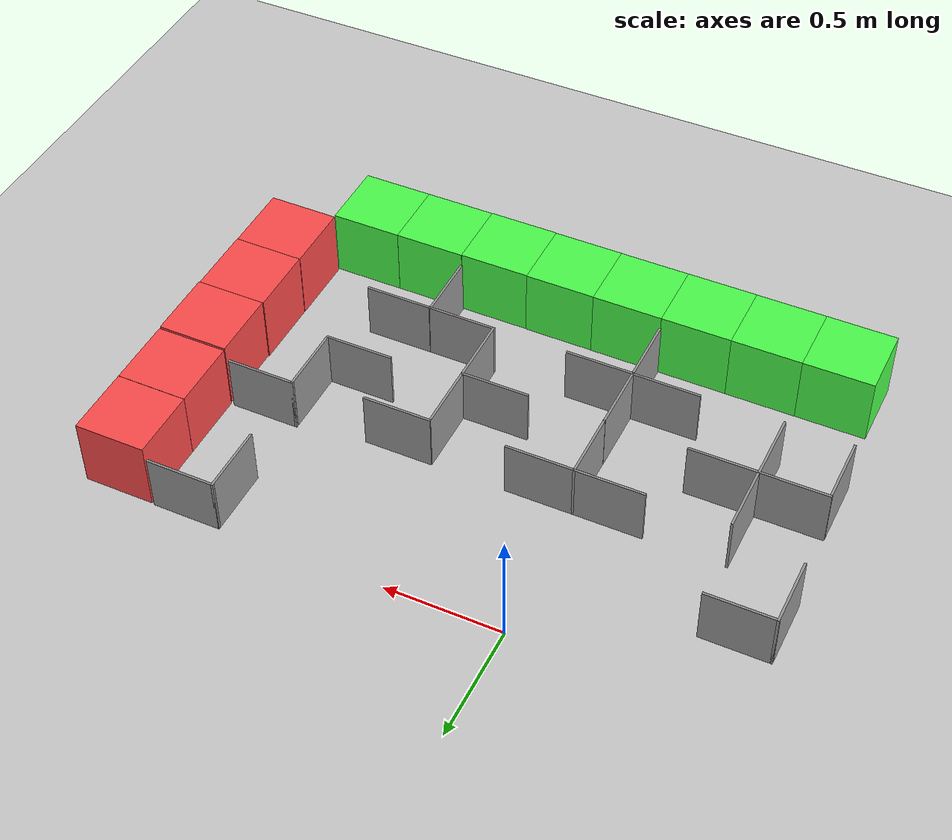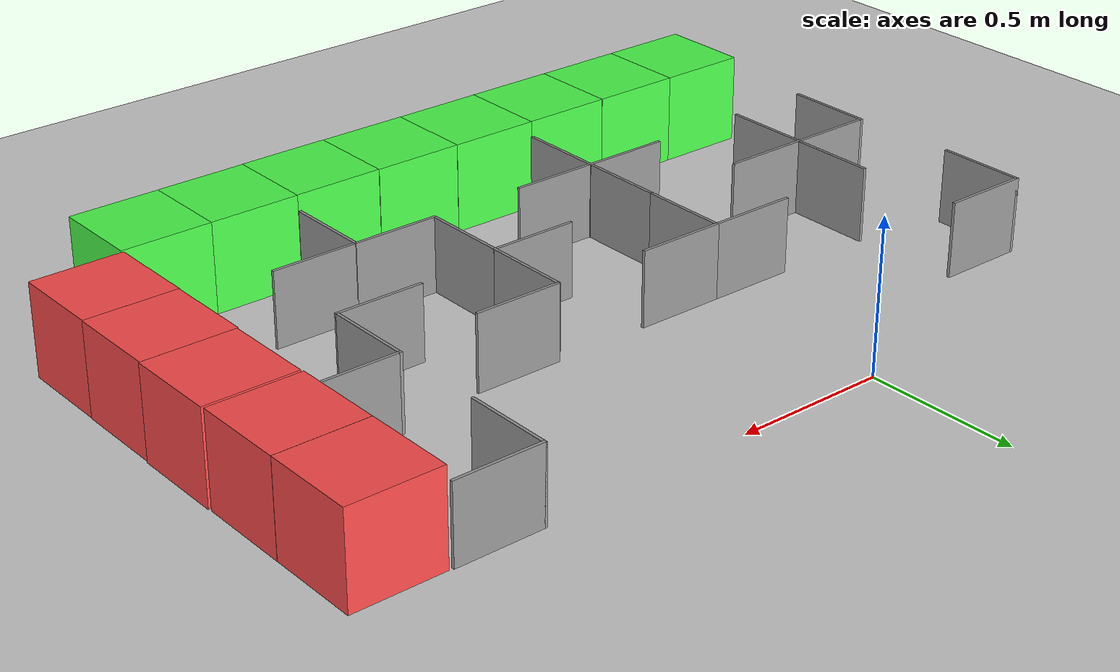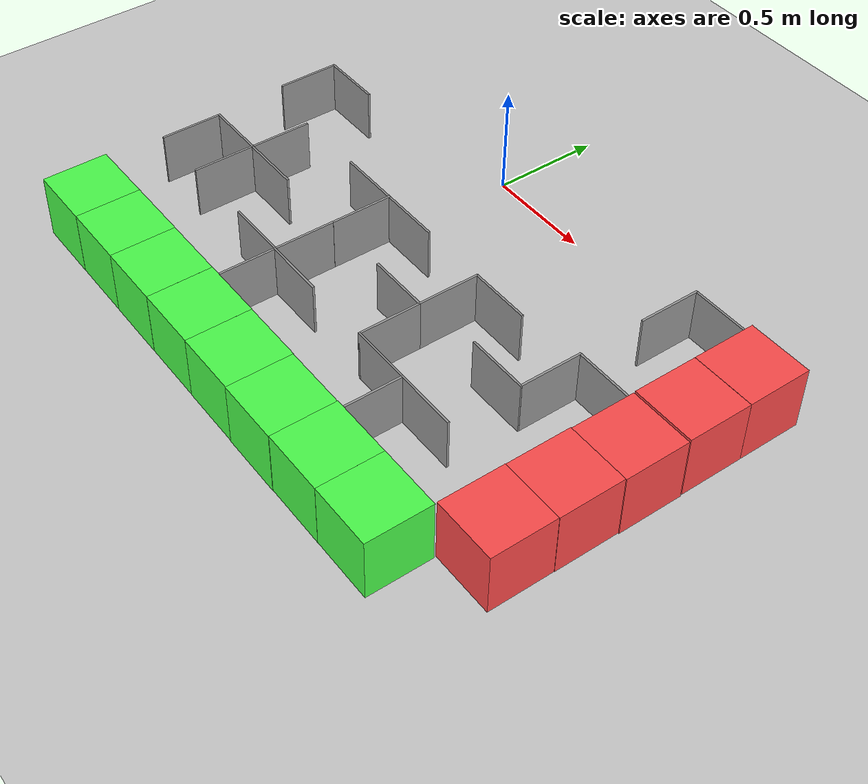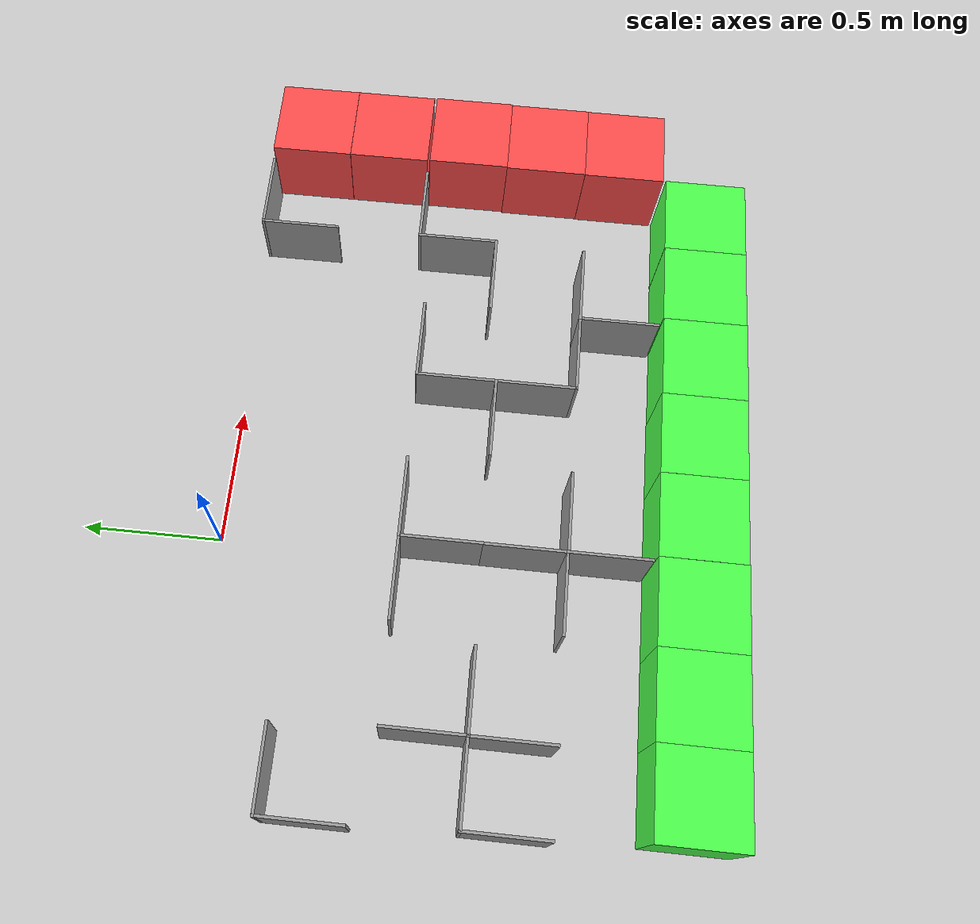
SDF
<sdf version="1.6">
 <world name="default">
  <model name="ground_plane">
   <static>1</static>
   <link name="link">
    <collision name="collision">
     <geometry><plane><normal>0 0 1</normal><size>100 100</size></plane></geometry>
     <surface><friction><ode><mu>100</mu><mu2>50</mu2></ode></friction></surface>
    </collision>
    <visual name="visual">
     <cast_shadows>0</cast_shadows>
     <geometry><plane><normal>0 0 1</normal><size>100 100</size></plane></geometry>
     <material>
      <script><uri>file://media/materials/scripts/gazebo.material</uri><name>Gazebo/Grey</name></script>
     </material>
    </visual>
   </link>
  </model>
  <model name="Box_Red_clone_3">
   <link name="link_0">
    <inertial>
     <mass>1</mass>
     <inertia>
      <ixx>0.166667</ixx>
      <ixy>0</ixy>
      <ixz>0</ixz>
      <iyy>0.166667</iyy>
      <iyz>0</iyz>
      <izz>0.166667</izz>
     </inertia>
    </inertial>
    <visual name="visual">
     <geometry><box><size>0.3 0.3 0.3</size></box></geometry>
     <material>
      <lighting>1</lighting>
      <script><uri>file://media/materials/scripts/gazebo.material</uri><name>Gazebo/Grey</name></script>
      <ambient>1 0.3 0.3 1</ambient>
      <diffuse>0.7 0.7 0.7 1</diffuse>
      <specular>0.01 0.01 0.01 1</specular>
      <emissive>0 0 0 1</emissive>
      <shader type="vertex"><normal_map>__default__</normal_map></shader>
     </material>
    </visual>
    <collision name="collision">
     <geometry><box><size>0.3 0.3 0.3</size></box></geometry>
     <surface>
      <friction>
       <ode><mu>1</mu><mu2>1</mu2><fdir1>0 0 0</fdir1><slip1>0</slip1><slip2>0</slip2></ode>
       <torsional>
        <coefficient>1</coefficient>
        <patch_radius>0</patch_radius>
        <surface_radius>0</surface_radius>
        <use_patch_radius>1</use_patch_radius>
        <ode><slip>0</slip></ode>
       </torsional>
      </friction>
      <bounce><restitution_coefficient>0</restitution_coefficient><threshold>1e+06</threshold></bounce>
      <contact>
       <collide_without_contact>0</collide_without_contact>
       <collide_without_contact_bitmask>1</collide_without_contact_bitmask>
       <collide_bitmask>1</collide_bitmask>
       <ode>
        <soft_cfm>0</soft_cfm>
        <soft_erp>0.2</soft_erp>
        <kp>1e+13</kp>
        <kd>1</kd>
        <max_vel>0.01</max_vel>
        <min_depth>0</min_depth>
       </ode>
       <bullet>
        <split_impulse>1</split_impulse>
        <split_impulse_penetration_threshold>-0.01</split_impulse_penetration_threshold>
        <soft_cfm>0</soft_cfm>
        <soft_erp>0.2</soft_erp>
        <kp>1e+13</kp>
        <kd>1</kd>
       </bullet>
      </contact>
     </surface>
    </collision>
   </link>
   <static>0</static>
   <pose>1.6594 -0.13972 0.15 0 -0 0.000188</pose>
  </model>
  <model name="Box_Red_clone_4">
   <link name="link_0">
    <inertial>
     <mass>1</mass>
     <inertia>
      <ixx>0.166667</ixx>
      <ixy>0</ixy>
      <ixz>0</ixz>
      <iyy>0.166667</iyy>
      <iyz>0</iyz>
      <izz>0.166667</izz>
     </inertia>
    </inertial>
    <visual name="visual">
     <geometry><box><size>0.3 0.3 0.3</size></box></geometry>
     <material>
      <lighting>1</lighting>
      <script><uri>file://media/materials/scripts/gazebo.material</uri><name>Gazebo/Grey</name></script>
      <ambient>1 0.3 0.3 1</ambient>
      <diffuse>0.7 0.7 0.7 1</diffuse>
      <specular>0.01 0.01 0.01 1</specular>
      <emissive>0 0 0 1</emissive>
      <shader type="vertex"><normal_map>__default__</normal_map></shader>
     </material>
    </visual>
    <collision name="collision">
     <geometry><box><size>0.3 0.3 0.3</size></box></geometry>
     <surface>
      <friction>
       <ode><mu>1</mu><mu2>1</mu2><fdir1>0 0 0</fdir1><slip1>0</slip1><slip2>0</slip2></ode>
       <torsional>
        <coefficient>1</coefficient>
        <patch_radius>0</patch_radius>
        <surface_radius>0</surface_radius>
        <use_patch_radius>1</use_patch_radius>
        <ode><slip>0</slip></ode>
       </torsional>
      </friction>
      <bounce><restitution_coefficient>0</restitution_coefficient><threshold>1e+06</threshold></bounce>
      <contact>
       <collide_without_contact>0</collide_without_contact>
       <collide_without_contact_bitmask>1</collide_without_contact_bitmask>
       <collide_bitmask>1</collide_bitmask>
       <ode>
        <soft_cfm>0</soft_cfm>
        <soft_erp>0.2</soft_erp>
        <kp>1e+13</kp>
        <kd>1</kd>
        <max_vel>0.01</max_vel>
        <min_depth>0</min_depth>
       </ode>
       <bullet>
        <split_impulse>1</split_impulse>
        <split_impulse_penetration_threshold>-0.01</split_impulse_penetration_threshold>
        <soft_cfm>0</soft_cfm>
        <soft_erp>0.2</soft_erp>
        <kp>1e+13</kp>
        <kd>1</kd>
       </bullet>
      </contact>
     </surface>
    </collision>
   </link>
   <static>0</static>
   <pose>1.65976 -0.440197 0.15 0 -0 0.000127</pose>
  </model>
  <model name="Box_Red_clone_5">
   <link name="link_0">
    <inertial>
     <mass>1</mass>
     <inertia>
      <ixx>0.166667</ixx>
      <ixy>0</ixy>
      <ixz>0</ixz>
      <iyy>0.166667</iyy>
      <iyz>0</iyz>
      <izz>0.166667</izz>
     </inertia>
    </inertial>
    <visual name="visual">
     <geometry><box><size>0.3 0.3 0.3</size></box></geometry>
     <material>
      <lighting>1</lighting>
      <script><uri>file://media/materials/scripts/gazebo.material</uri><name>Gazebo/Grey</name></script>
      <ambient>1 0.3 0.3 1</ambient>
      <diffuse>0.7 0.7 0.7 1</diffuse>
      <specular>0.01 0.01 0.01 1</specular>
      <emissive>0 0 0 1</emissive>
      <shader type="vertex"><normal_map>__default__</normal_map></shader>
     </material>
    </visual>
    <collision name="collision">
     <geometry><box><size>0.3 0.3 0.3</size></box></geometry>
     <surface>
      <friction>
       <ode><mu>1</mu><mu2>1</mu2><fdir1>0 0 0</fdir1><slip1>0</slip1><slip2>0</slip2></ode>
       <torsional>
        <coefficient>1</coefficient>
        <patch_radius>0</patch_radius>
        <surface_radius>0</surface_radius>
        <use_patch_radius>1</use_patch_radius>
        <ode><slip>0</slip></ode>
       </torsional>
      </friction>
      <bounce><restitution_coefficient>0</restitution_coefficient><threshold>1e+06</threshold></bounce>
      <contact>
       <collide_without_contact>0</collide_without_contact>
       <collide_without_contact_bitmask>1</collide_without_contact_bitmask>
       <collide_bitmask>1</collide_bitmask>
       <ode>
        <soft_cfm>0</soft_cfm>
        <soft_erp>0.2</soft_erp>
        <kp>1e+13</kp>
        <kd>1</kd>
        <max_vel>0.01</max_vel>
        <min_depth>0</min_depth>
       </ode>
       <bullet>
        <split_impulse>1</split_impulse>
        <split_impulse_penetration_threshold>-0.01</split_impulse_penetration_threshold>
        <soft_cfm>0</soft_cfm>
        <soft_erp>0.2</soft_erp>
        <kp>1e+13</kp>
        <kd>1</kd>
       </bullet>
      </contact>
     </surface>
    </collision>
   </link>
   <static>0</static>
   <pose>1.66291 -0.749288 0.15 0 -0 0.000151</pose>
  </model>
  <model name="Box_Red_clone_6">
   <link name="link_0">
    <inertial>
     <mass>1</mass>
     <inertia>
      <ixx>0.166667</ixx>
      <ixy>0</ixy>
      <ixz>0</ixz>
      <iyy>0.166667</iyy>
      <iyz>0</iyz>
      <izz>0.166667</izz>
     </inertia>
    </inertial>
    <visual name="visual">
     <geometry><box><size>0.3 0.3 0.3</size></box></geometry>
     <material>
      <lighting>1</lighting>
      <script><uri>file://media/materials/scripts/gazebo.material</uri><name>Gazebo/Grey</name></script>
      <ambient>1 0.3 0.3 1</ambient>
      <diffuse>0.7 0.7 0.7 1</diffuse>
      <specular>0.01 0.01 0.01 1</specular>
      <emissive>0 0 0 1</emissive>
      <shader type="vertex"><normal_map>__default__</normal_map></shader>
     </material>
    </visual>
    <collision name="collision">
     <geometry><box><size>0.3 0.3 0.3</size></box></geometry>
     <surface>
      <friction>
       <ode><mu>1</mu><mu2>1</mu2><fdir1>0 0 0</fdir1><slip1>0</slip1><slip2>0</slip2></ode>
       <torsional>
        <coefficient>1</coefficient>
        <patch_radius>0</patch_radius>
        <surface_radius>0</surface_radius>
        <use_patch_radius>1</use_patch_radius>
        <ode><slip>0</slip></ode>
       </torsional>
      </friction>
      <bounce><restitution_coefficient>0</restitution_coefficient><threshold>1e+06</threshold></bounce>
      <contact>
       <collide_without_contact>0</collide_without_contact>
       <collide_without_contact_bitmask>1</collide_without_contact_bitmask>
       <collide_bitmask>1</collide_bitmask>
       <ode>
        <soft_cfm>0</soft_cfm>
        <soft_erp>0.2</soft_erp>
        <kp>1e+13</kp>
        <kd>1</kd>
        <max_vel>0.01</max_vel>
        <min_depth>0</min_depth>
       </ode>
       <bullet>
        <split_impulse>1</split_impulse>
        <split_impulse_penetration_threshold>-0.01</split_impulse_penetration_threshold>
        <soft_cfm>0</soft_cfm>
        <soft_erp>0.2</soft_erp>
        <kp>1e+13</kp>
        <kd>1</kd>
       </bullet>
      </contact>
     </surface>
    </collision>
   </link>
   <static>0</static>
   <pose>1.65901 -1.04937 0.15 0 0 -0.000401</pose>
  </model>
  <model name="Box_Red_clone_7">
   <link name="link_0">
    <inertial>
     <mass>1</mass>
     <inertia>
      <ixx>0.166667</ixx>
      <ixy>0</ixy>
      <ixz>0</ixz>
      <iyy>0.166667</iyy>
      <iyz>0</iyz>
      <izz>0.166667</izz>
     </inertia>
    </inertial>
    <visual name="visual">
     <geometry><box><size>0.3 0.3 0.3</size></box></geometry>
     <material>
      <lighting>1</lighting>
      <script><uri>file://media/materials/scripts/gazebo.material</uri><name>Gazebo/Grey</name></script>
      <ambient>1 0.3 0.3 1</ambient>
      <diffuse>0.7 0.7 0.7 1</diffuse>
      <specular>0.01 0.01 0.01 1</specular>
      <emissive>0 0 0 1</emissive>
      <shader type="vertex"><normal_map>__default__</normal_map></shader>
     </material>
    </visual>
    <collision name="collision">
     <geometry><box><size>0.3 0.3 0.3</size></box></geometry>
     <surface>
      <friction>
       <ode><mu>1</mu><mu2>1</mu2><fdir1>0 0 0</fdir1><slip1>0</slip1><slip2>0</slip2></ode>
       <torsional>
        <coefficient>1</coefficient>
        <patch_radius>0</patch_radius>
        <surface_radius>0</surface_radius>
        <use_patch_radius>1</use_patch_radius>
        <ode><slip>0</slip></ode>
       </torsional>
      </friction>
      <bounce><restitution_coefficient>0</restitution_coefficient><threshold>1e+06</threshold></bounce>
      <contact>
       <collide_without_contact>0</collide_without_contact>
       <collide_without_contact_bitmask>1</collide_without_contact_bitmask>
       <collide_bitmask>1</collide_bitmask>
       <ode>
        <soft_cfm>0</soft_cfm>
        <soft_erp>0.2</soft_erp>
        <kp>1e+13</kp>
        <kd>1</kd>
        <max_vel>0.01</max_vel>
        <min_depth>0</min_depth>
       </ode>
       <bullet>
        <split_impulse>1</split_impulse>
        <split_impulse_penetration_threshold>-0.01</split_impulse_penetration_threshold>
        <soft_cfm>0</soft_cfm>
        <soft_erp>0.2</soft_erp>
        <kp>1e+13</kp>
        <kd>1</kd>
       </bullet>
      </contact>
     </surface>
    </collision>
   </link>
   <static>0</static>
   <pose>1.65724 -1.34939 0.15 0 -0 -0.000478</pose>
  </model>
  <model name="Box_Green">
   <link name="link_0">
    <inertial>
     <mass>1</mass>
     <inertia>
      <ixx>0.166667</ixx>
      <ixy>0</ixy>
      <ixz>0</ixz>
      <iyy>0.166667</iyy>
      <iyz>0</iyz>
      <izz>0.166667</izz>
     </inertia>
    </inertial>
    <visual name="visual">
     <geometry><box><size>0.3 0.3 0.3</size></box></geometry>
     <material>
      <lighting>1</lighting>
      <script><uri>file://media/materials/scripts/gazebo.material</uri><name>Gazebo/Grey</name></script>
      <ambient>0.3 1 0.3 1</ambient>
      <diffuse>0.7 0.7 0.7 1</diffuse>
      <specular>0.01 0.01 0.01 1</specular>
      <emissive>0 0 0 1</emissive>
      <shader type="vertex"><normal_map>__default__</normal_map></shader>
     </material>
    </visual>
    <collision name="collision">
     <geometry><box><size>0.3 0.3 0.3</size></box></geometry>
     <surface>
      <friction>
       <ode><mu>1</mu><mu2>1</mu2><fdir1>0 0 0</fdir1><slip1>0</slip1><slip2>0</slip2></ode>
       <torsional>
        <coefficient>1</coefficient>
        <patch_radius>0</patch_radius>
        <surface_radius>0</surface_radius>
        <use_patch_radius>1</use_patch_radius>
        <ode><slip>0</slip></ode>
       </torsional>
      </friction>
      <bounce><restitution_coefficient>0</restitution_coefficient><threshold>1e+06</threshold></bounce>
      <contact>
       <collide_without_contact>0</collide_without_contact>
       <collide_without_contact_bitmask>1</collide_without_contact_bitmask>
       <collide_bitmask>1</collide_bitmask>
       <ode>
        <soft_cfm>0</soft_cfm>
        <soft_erp>0.2</soft_erp>
        <kp>1e+13</kp>
        <kd>1</kd>
        <max_vel>0.01</max_vel>
        <min_depth>0</min_depth>
       </ode>
       <bullet>
        <split_impulse>1</split_impulse>
        <split_impulse_penetration_threshold>-0.01</split_impulse_penetration_threshold>
        <soft_cfm>0</soft_cfm>
        <soft_erp>0.2</soft_erp>
        <kp>1e+13</kp>
        <kd>1</kd>
       </bullet>
      </contact>
     </surface>
    </collision>
   </link>
   <static>0</static>
   <pose>1.36034 -1.65857 0.15 0 -0 -0.000458</pose>
  </model>
  <model name="Box_Green_clone">
   <link name="link_0">
    <inertial>
     <mass>1</mass>
     <inertia>
      <ixx>0.166667</ixx>
      <ixy>0</ixy>
      <ixz>0</ixz>
      <iyy>0.166667</iyy>
      <iyz>0</iyz>
      <izz>0.166667</izz>
     </inertia>
    </inertial>
    <visual name="visual">
     <geometry><box><size>0.3 0.3 0.3</size></box></geometry>
     <material>
      <lighting>1</lighting>
      <script><uri>file://media/materials/scripts/gazebo.material</uri><name>Gazebo/Grey</name></script>
      <ambient>0.3 1 0.3 1</ambient>
      <diffuse>0.7 0.7 0.7 1</diffuse>
      <specular>0.01 0.01 0.01 1</specular>
      <emissive>0 0 0 1</emissive>
      <shader type="vertex"><normal_map>__default__</normal_map></shader>
     </material>
    </visual>
    <collision name="collision">
     <geometry><box><size>0.3 0.3 0.3</size></box></geometry>
     <surface>
      <friction>
       <ode><mu>1</mu><mu2>1</mu2><fdir1>0 0 0</fdir1><slip1>0</slip1><slip2>0</slip2></ode>
       <torsional>
        <coefficient>1</coefficient>
        <patch_radius>0</patch_radius>
        <surface_radius>0</surface_radius>
        <use_patch_radius>1</use_patch_radius>
        <ode><slip>0</slip></ode>
       </torsional>
      </friction>
      <bounce><restitution_coefficient>0</restitution_coefficient><threshold>1e+06</threshold></bounce>
      <contact>
       <collide_without_contact>0</collide_without_contact>
       <collide_without_contact_bitmask>1</collide_without_contact_bitmask>
       <collide_bitmask>1</collide_bitmask>
       <ode>
        <soft_cfm>0</soft_cfm>
        <soft_erp>0.2</soft_erp>
        <kp>1e+13</kp>
        <kd>1</kd>
        <max_vel>0.01</max_vel>
        <min_depth>0</min_depth>
       </ode>
       <bullet>
        <split_impulse>1</split_impulse>
        <split_impulse_penetration_threshold>-0.01</split_impulse_penetration_threshold>
        <soft_cfm>0</soft_cfm>
        <soft_erp>0.2</soft_erp>
        <kp>1e+13</kp>
        <kd>1</kd>
       </bullet>
      </contact>
     </surface>
    </collision>
   </link>
   <static>0</static>
   <pose>1.06033 -1.65894 0.15 0 0 -0.000432</pose>
  </model>
  <model name="Box_Green_clone_0">
   <link name="link_0">
    <inertial>
     <mass>1</mass>
     <inertia>
      <ixx>0.166667</ixx>
      <ixy>0</ixy>
      <ixz>0</ixz>
      <iyy>0.166667</iyy>
      <iyz>0</iyz>
      <izz>0.166667</izz>
     </inertia>
    </inertial>
    <visual name="visual">
     <geometry><box><size>0.3 0.3 0.3</size></box></geometry>
     <material>
      <lighting>1</lighting>
      <script><uri>file://media/materials/scripts/gazebo.material</uri><name>Gazebo/Grey</name></script>
      <ambient>0.3 1 0.3 1</ambient>
      <diffuse>0.7 0.7 0.7 1</diffuse>
      <specular>0.01 0.01 0.01 1</specular>
      <emissive>0 0 0 1</emissive>
      <shader type="vertex"><normal_map>__default__</normal_map></shader>
     </material>
    </visual>
    <collision name="collision">
     <geometry><box><size>0.3 0.3 0.3</size></box></geometry>
     <surface>
      <friction>
       <ode><mu>1</mu><mu2>1</mu2><fdir1>0 0 0</fdir1><slip1>0</slip1><slip2>0</slip2></ode>
       <torsional>
        <coefficient>1</coefficient>
        <patch_radius>0</patch_radius>
        <surface_radius>0</surface_radius>
        <use_patch_radius>1</use_patch_radius>
        <ode><slip>0</slip></ode>
       </torsional>
      </friction>
      <bounce><restitution_coefficient>0</restitution_coefficient><threshold>1e+06</threshold></bounce>
      <contact>
       <collide_without_contact>0</collide_without_contact>
       <collide_without_contact_bitmask>1</collide_without_contact_bitmask>
       <collide_bitmask>1</collide_bitmask>
       <ode>
        <soft_cfm>0</soft_cfm>
        <soft_erp>0.2</soft_erp>
        <kp>1e+13</kp>
        <kd>1</kd>
        <max_vel>0.01</max_vel>
        <min_depth>0</min_depth>
       </ode>
       <bullet>
        <split_impulse>1</split_impulse>
        <split_impulse_penetration_threshold>-0.01</split_impulse_penetration_threshold>
        <soft_cfm>0</soft_cfm>
        <soft_erp>0.2</soft_erp>
        <kp>1e+13</kp>
        <kd>1</kd>
       </bullet>
      </contact>
     </surface>
    </collision>
   </link>
   <static>0</static>
   <pose>0.76033 -1.66048 0.15 0 0 -0.00043</pose>
  </model>
  <model name="Box_Green_clone_1">
   <link name="link_0">
    <inertial>
     <mass>1</mass>
     <inertia>
      <ixx>0.166667</ixx>
      <ixy>0</ixy>
      <ixz>0</ixz>
      <iyy>0.166667</iyy>
      <iyz>0</iyz>
      <izz>0.166667</izz>
     </inertia>
    </inertial>
    <visual name="visual">
     <geometry><box><size>0.3 0.3 0.3</size></box></geometry>
     <material>
      <lighting>1</lighting>
      <script><uri>file://media/materials/scripts/gazebo.material</uri><name>Gazebo/Grey</name></script>
      <ambient>0.3 1 0.3 1</ambient>
      <diffuse>0.7 0.7 0.7 1</diffuse>
      <specular>0.01 0.01 0.01 1</specular>
      <emissive>0 0 0 1</emissive>
      <shader type="vertex"><normal_map>__default__</normal_map></shader>
     </material>
    </visual>
    <collision name="collision">
     <geometry><box><size>0.3 0.3 0.3</size></box></geometry>
     <surface>
      <friction>
       <ode><mu>1</mu><mu2>1</mu2><fdir1>0 0 0</fdir1><slip1>0</slip1><slip2>0</slip2></ode>
       <torsional>
        <coefficient>1</coefficient>
        <patch_radius>0</patch_radius>
        <surface_radius>0</surface_radius>
        <use_patch_radius>1</use_patch_radius>
        <ode><slip>0</slip></ode>
       </torsional>
      </friction>
      <bounce><restitution_coefficient>0</restitution_coefficient><threshold>1e+06</threshold></bounce>
      <contact>
       <collide_without_contact>0</collide_without_contact>
       <collide_without_contact_bitmask>1</collide_without_contact_bitmask>
       <collide_bitmask>1</collide_bitmask>
       <ode>
        <soft_cfm>0</soft_cfm>
        <soft_erp>0.2</soft_erp>
        <kp>1e+13</kp>
        <kd>1</kd>
        <max_vel>0.01</max_vel>
        <min_depth>0</min_depth>
       </ode>
       <bullet>
        <split_impulse>1</split_impulse>
        <split_impulse_penetration_threshold>-0.01</split_impulse_penetration_threshold>
        <soft_cfm>0</soft_cfm>
        <soft_erp>0.2</soft_erp>
        <kp>1e+13</kp>
        <kd>1</kd>
       </bullet>
      </contact>
     </surface>
    </collision>
   </link>
   <static>0</static>
   <pose>0.460329 -1.65855 0.15 0 0 -0.000426</pose>
  </model>
  <model name="Box_Green_clone_2">
   <link name="link_0">
    <inertial>
     <mass>1</mass>
     <inertia>
      <ixx>0.166667</ixx>
      <ixy>0</ixy>
      <ixz>0</ixz>
      <iyy>0.166667</iyy>
      <iyz>0</iyz>
      <izz>0.166667</izz>
     </inertia>
    </inertial>
    <visual name="visual">
     <geometry><box><size>0.3 0.3 0.3</size></box></geometry>
     <material>
      <lighting>1</lighting>
      <script><uri>file://media/materials/scripts/gazebo.material</uri><name>Gazebo/Grey</name></script>
      <ambient>0.3 1 0.3 1</ambient>
      <diffuse>0.7 0.7 0.7 1</diffuse>
      <specular>0.01 0.01 0.01 1</specular>
      <emissive>0 0 0 1</emissive>
      <shader type="vertex"><normal_map>__default__</normal_map></shader>
     </material>
    </visual>
    <collision name="collision">
     <geometry><box><size>0.3 0.3 0.3</size></box></geometry>
     <surface>
      <friction>
       <ode><mu>1</mu><mu2>1</mu2><fdir1>0 0 0</fdir1><slip1>0</slip1><slip2>0</slip2></ode>
       <torsional>
        <coefficient>1</coefficient>
        <patch_radius>0</patch_radius>
        <surface_radius>0</surface_radius>
        <use_patch_radius>1</use_patch_radius>
        <ode><slip>0</slip></ode>
       </torsional>
      </friction>
      <bounce><restitution_coefficient>0</restitution_coefficient><threshold>1e+06</threshold></bounce>
      <contact>
       <collide_without_contact>0</collide_without_contact>
       <collide_without_contact_bitmask>1</collide_without_contact_bitmask>
       <collide_bitmask>1</collide_bitmask>
       <ode>
        <soft_cfm>0</soft_cfm>
        <soft_erp>0.2</soft_erp>
        <kp>1e+13</kp>
        <kd>1</kd>
        <max_vel>0.01</max_vel>
        <min_depth>0</min_depth>
       </ode>
       <bullet>
        <split_impulse>1</split_impulse>
        <split_impulse_penetration_threshold>-0.01</split_impulse_penetration_threshold>
        <soft_cfm>0</soft_cfm>
        <soft_erp>0.2</soft_erp>
        <kp>1e+13</kp>
        <kd>1</kd>
       </bullet>
      </contact>
     </surface>
    </collision>
   </link>
   <static>0</static>
   <pose>0.160315 -1.65757 0.15 0 0 -0.000344</pose>
  </model>
  <model name="Box_Green_clone_3">
   <link name="link_0">
    <inertial>
     <mass>1</mass>
     <inertia>
      <ixx>0.166667</ixx>
      <ixy>0</ixy>
      <ixz>0</ixz>
      <iyy>0.166667</iyy>
      <iyz>0</iyz>
      <izz>0.166667</izz>
     </inertia>
    </inertial>
    <visual name="visual">
     <geometry><box><size>0.3 0.3 0.3</size></box></geometry>
     <material>
      <lighting>1</lighting>
      <script><uri>file://media/materials/scripts/gazebo.material</uri><name>Gazebo/Grey</name></script>
      <ambient>0.3 1 0.3 1</ambient>
      <diffuse>0.7 0.7 0.7 1</diffuse>
      <specular>0.01 0.01 0.01 1</specular>
      <emissive>0 0 0 1</emissive>
      <shader type="vertex"><normal_map>__default__</normal_map></shader>
     </material>
    </visual>
    <collision name="collision">
     <geometry><box><size>0.3 0.3 0.3</size></box></geometry>
     <surface>
      <friction>
       <ode><mu>1</mu><mu2>1</mu2><fdir1>0 0 0</fdir1><slip1>0</slip1><slip2>0</slip2></ode>
       <torsional>
        <coefficient>1</coefficient>
        <patch_radius>0</patch_radius>
        <surface_radius>0</surface_radius>
        <use_patch_radius>1</use_patch_radius>
        <ode><slip>0</slip></ode>
       </torsional>
      </friction>
      <bounce><restitution_coefficient>0</restitution_coefficient><threshold>1e+06</threshold></bounce>
      <contact>
       <collide_without_contact>0</collide_without_contact>
       <collide_without_contact_bitmask>1</collide_without_contact_bitmask>
       <collide_bitmask>1</collide_bitmask>
       <ode>
        <soft_cfm>0</soft_cfm>
        <soft_erp>0.2</soft_erp>
        <kp>1e+13</kp>
        <kd>1</kd>
        <max_vel>0.01</max_vel>
        <min_depth>0</min_depth>
       </ode>
       <bullet>
        <split_impulse>1</split_impulse>
        <split_impulse_penetration_threshold>-0.01</split_impulse_penetration_threshold>
        <soft_cfm>0</soft_cfm>
        <soft_erp>0.2</soft_erp>
        <kp>1e+13</kp>
        <kd>1</kd>
       </bullet>
      </contact>
     </surface>
    </collision>
   </link>
   <static>0</static>
   <pose>-0.139726 -1.65795 0.15 0 -0 -8.5e-05</pose>
  </model>
  <model name="Box_Green_clone_4">
   <link name="link_0">
    <inertial>
     <mass>1</mass>
     <inertia>
      <ixx>0.166667</ixx>
      <ixy>0</ixy>
      <ixz>0</ixz>
      <iyy>0.166667</iyy>
      <iyz>0</iyz>
      <izz>0.166667</izz>
     </inertia>
    </inertial>
    <visual name="visual">
     <geometry><box><size>0.3 0.3 0.3</size></box></geometry>
     <material>
      <lighting>1</lighting>
      <script><uri>file://media/materials/scripts/gazebo.material</uri><name>Gazebo/Grey</name></script>
      <ambient>0.3 1 0.3 1</ambient>
      <diffuse>0.7 0.7 0.7 1</diffuse>
      <specular>0.01 0.01 0.01 1</specular>
      <emissive>0 0 0 1</emissive>
      <shader type="vertex"><normal_map>__default__</normal_map></shader>
     </material>
    </visual>
    <collision name="collision">
     <geometry><box><size>0.3 0.3 0.3</size></box></geometry>
     <surface>
      <friction>
       <ode><mu>1</mu><mu2>1</mu2><fdir1>0 0 0</fdir1><slip1>0</slip1><slip2>0</slip2></ode>
       <torsional>
        <coefficient>1</coefficient>
        <patch_radius>0</patch_radius>
        <surface_radius>0</surface_radius>
        <use_patch_radius>1</use_patch_radius>
        <ode><slip>0</slip></ode>
       </torsional>
      </friction>
      <bounce><restitution_coefficient>0</restitution_coefficient><threshold>1e+06</threshold></bounce>
      <contact>
       <collide_without_contact>0</collide_without_contact>
       <collide_without_contact_bitmask>1</collide_without_contact_bitmask>
       <collide_bitmask>1</collide_bitmask>
       <ode>
        <soft_cfm>0</soft_cfm>
        <soft_erp>0.2</soft_erp>
        <kp>1e+13</kp>
        <kd>1</kd>
        <max_vel>0.01</max_vel>
        <min_depth>0</min_depth>
       </ode>
       <bullet>
        <split_impulse>1</split_impulse>
        <split_impulse_penetration_threshold>-0.01</split_impulse_penetration_threshold>
        <soft_cfm>0</soft_cfm>
        <soft_erp>0.2</soft_erp>
        <kp>1e+13</kp>
        <kd>1</kd>
       </bullet>
      </contact>
     </surface>
    </collision>
   </link>
   <static>0</static>
   <pose>-0.439727 -1.6575 0.15 0 0 -8.5e-05</pose>
  </model>
  <model name="Box_Green_clone_5">
   <link name="link_0">
    <inertial>
     <mass>1</mass>
     <inertia>
      <ixx>0.166667</ixx>
      <ixy>0</ixy>
      <ixz>0</ixz>
      <iyy>0.166667</iyy>
      <iyz>0</iyz>
      <izz>0.166667</izz>
     </inertia>
    </inertial>
    <visual name="visual">
     <geometry><box><size>0.3 0.3 0.3</size></box></geometry>
     <material>
      <lighting>1</lighting>
      <script><uri>file://media/materials/scripts/gazebo.material</uri><name>Gazebo/Grey</name></script>
      <ambient>0.3 1 0.3 1</ambient>
      <diffuse>0.7 0.7 0.7 1</diffuse>
      <specular>0.01 0.01 0.01 1</specular>
      <emissive>0 0 0 1</emissive>
      <shader type="vertex"><normal_map>__default__</normal_map></shader>
     </material>
    </visual>
    <collision name="collision">
     <geometry><box><size>0.3 0.3 0.3</size></box></geometry>
     <surface>
      <friction>
       <ode><mu>1</mu><mu2>1</mu2><fdir1>0 0 0</fdir1><slip1>0</slip1><slip2>0</slip2></ode>
       <torsional>
        <coefficient>1</coefficient>
        <patch_radius>0</patch_radius>
        <surface_radius>0</surface_radius>
        <use_patch_radius>1</use_patch_radius>
        <ode><slip>0</slip></ode>
       </torsional>
      </friction>
      <bounce><restitution_coefficient>0</restitution_coefficient><threshold>1e+06</threshold></bounce>
      <contact>
       <collide_without_contact>0</collide_without_contact>
       <collide_without_contact_bitmask>1</collide_without_contact_bitmask>
       <collide_bitmask>1</collide_bitmask>
       <ode>
        <soft_cfm>0</soft_cfm>
        <soft_erp>0.2</soft_erp>
        <kp>1e+13</kp>
        <kd>1</kd>
        <max_vel>0.01</max_vel>
        <min_depth>0</min_depth>
       </ode>
       <bullet>
        <split_impulse>1</split_impulse>
        <split_impulse_penetration_threshold>-0.01</split_impulse_penetration_threshold>
        <soft_cfm>0</soft_cfm>
        <soft_erp>0.2</soft_erp>
        <kp>1e+13</kp>
        <kd>1</kd>
       </bullet>
      </contact>
     </surface>
    </collision>
   </link>
   <static>0</static>
   <pose>-0.739728 -1.6577 0.15 -0 -0 -8.5e-05</pose>
  </model>
  <model name="Maze_L_LB_clone">
   <pose>1.35035 -0.132332 0 0 -0 0</pose>
   <link name="Wall_0">
    <collision name="Wall_0_Collision">
     <geometry><box><size>0.294 0.01 0.25</size></box></geometry>
     <pose>0 0 0.125 0 -0 0</pose>
    </collision>
    <visual name="Wall_0_Visual">
     <pose>0 0 0.125 0 -0 0</pose>
     <geometry><box><size>0.294 0.01 0.25</size></box></geometry>
     <material>
      <script><uri>file://media/materials/scripts/gazebo.material</uri><name>Gazebo/Grey</name></script>
      <ambient>1 1 1 1</ambient>
     </material>
     <meta><layer>0</layer></meta>
    </visual>
    <pose>0 0.142 0 0 -0 0</pose>
   </link>
   <link name="Wall_2">
    <collision name="Wall_2_Collision">
     <geometry><box><size>0.294 0.01 0.25</size></box></geometry>
     <pose>0 0 0.125 0 -0 0</pose>
    </collision>
    <visual name="Wall_2_Visual">
     <pose>0 0 0.125 0 -0 0</pose>
     <geometry><box><size>0.294 0.01 0.25</size></box></geometry>
     <material>
      <script><uri>file://media/materials/scripts/gazebo.material</uri><name>Gazebo/Grey</name></script>
      <ambient>1 1 1 1</ambient>
     </material>
     <meta><layer>0</layer></meta>
    </visual>
    <pose>-0.142 0 0 0 0 -1.5708</pose>
   </link>
   <static>1</static>
  </model>
  <model name="Maze_L_LB_clone_1">
   <pose>1.34781 -0.734464 0 0 -0 0</pose>
   <link name="Wall_0">
    <collision name="Wall_0_Collision">
     <geometry><box><size>0.294 0.01 0.25</size></box></geometry>
     <pose>0 0 0.125 0 -0 0</pose>
    </collision>
    <visual name="Wall_0_Visual">
     <pose>0 0 0.125 0 -0 0</pose>
     <geometry><box><size>0.294 0.01 0.25</size></box></geometry>
     <material>
      <script><uri>file://media/materials/scripts/gazebo.material</uri><name>Gazebo/Grey</name></script>
      <ambient>1 1 1 1</ambient>
     </material>
     <meta><layer>0</layer></meta>
    </visual>
    <pose>0 0.142 0 0 -0 0</pose>
   </link>
   <link name="Wall_2">
    <collision name="Wall_2_Collision">
     <geometry><box><size>0.294 0.01 0.25</size></box></geometry>
     <pose>0 0 0.125 0 -0 0</pose>
    </collision>
    <visual name="Wall_2_Visual">
     <pose>0 0 0.125 0 -0 0</pose>
     <geometry><box><size>0.294 0.01 0.25</size></box></geometry>
     <material>
      <script><uri>file://media/materials/scripts/gazebo.material</uri><name>Gazebo/Grey</name></script>
      <ambient>1 1 1 1</ambient>
     </material>
     <meta><layer>0</layer></meta>
    </visual>
    <pose>-0.142 0 0 0 0 -1.5708</pose>
   </link>
   <static>1</static>
  </model>
  <model name="Maze_I_V_clone">
   <pose>1.06361 -0.883251 0 0 -0 0</pose>
   <link name="Wall_0">
    <collision name="Wall_0_Collision">
     <geometry><box><size>0.294 0.01 0.25</size></box></geometry>
     <pose>0 0 0.125 0 -0 0</pose>
    </collision>
    <visual name="Wall_0_Visual">
     <pose>0 0 0.125 0 -0 0</pose>
     <geometry><box><size>0.294 0.01 0.25</size></box></geometry>
     <material>
      <script><uri>file://media/materials/scripts/gazebo.material</uri><name>Gazebo/Grey</name></script>
      <ambient>1 1 1 1</ambient>
     </material>
     <meta><layer>0</layer></meta>
    </visual>
   </link>
   <static>1</static>
  </model>
  <model name="Maze_L_LB_clone_2">
   <pose>1.04986 -1.35673 0 0 -0 0</pose>
   <link name="Wall_0">
    <collision name="Wall_0_Collision">
     <geometry><box><size>0.294 0.01 0.25</size></box></geometry>
     <pose>0 0 0.125 0 -0 0</pose>
    </collision>
    <visual name="Wall_0_Visual">
     <pose>0 0 0.125 0 -0 0</pose>
     <geometry><box><size>0.294 0.01 0.25</size></box></geometry>
     <material>
      <script><uri>file://media/materials/scripts/gazebo.material</uri><name>Gazebo/Grey</name></script>
      <ambient>1 1 1 1</ambient>
     </material>
     <meta><layer>0</layer></meta>
    </visual>
    <pose>0 0.142 0 0 -0 0</pose>
   </link>
   <link name="Wall_2">
    <collision name="Wall_2_Collision">
     <geometry><box><size>0.294 0.01 0.25</size></box></geometry>
     <pose>0 0 0.125 0 -0 0</pose>
    </collision>
    <visual name="Wall_2_Visual">
     <pose>0 0 0.125 0 -0 0</pose>
     <geometry><box><size>0.294 0.01 0.25</size></box></geometry>
     <material>
      <script><uri>file://media/materials/scripts/gazebo.material</uri><name>Gazebo/Grey</name></script>
      <ambient>1 1 1 1</ambient>
     </material>
     <meta><layer>0</layer></meta>
    </visual>
    <pose>-0.142 0 0 0 0 -1.5708</pose>
   </link>
   <static>1</static>
  </model>
  <model name="Maze_L_RB_clone_2">
   <pose>0.763598 -1.0726 0 0 -0 0</pose>
   <link name="Wall_0">
    <collision name="Wall_0_Collision">
     <geometry><box><size>0.294 0.01 0.25</size></box></geometry>
     <pose>0 0 0.125 0 -0 0</pose>
    </collision>
    <visual name="Wall_0_Visual">
     <pose>0 0 0.125 0 -0 0</pose>
     <geometry><box><size>0.294 0.01 0.25</size></box></geometry>
     <material>
      <script><uri>file://media/materials/scripts/gazebo.material</uri><name>Gazebo/Grey</name></script>
      <ambient>1 1 1 1</ambient>
     </material>
     <meta><layer>0</layer></meta>
    </visual>
    <pose>0 -0.142 0 0 -0 0</pose>
   </link>
   <link name="Wall_2">
    <collision name="Wall_2_Collision">
     <geometry><box><size>0.294 0.01 0.25</size></box></geometry>
     <pose>0 0 0.125 0 -0 0</pose>
    </collision>
    <visual name="Wall_2_Visual">
     <pose>0 0 0.125 0 -0 0</pose>
     <geometry><box><size>0.294 0.01 0.25</size></box></geometry>
     <material>
      <script><uri>file://media/materials/scripts/gazebo.material</uri><name>Gazebo/Grey</name></script>
      <ambient>1 1 1 1</ambient>
     </material>
     <meta><layer>0</layer></meta>
    </visual>
    <pose>-0.142 0 0 0 -0 1.5708</pose>
   </link>
   <static>1</static>
  </model>
  <model name="Maze_L_RU_clone">
   <pose>0.479452 -0.784371 0 0 -0 0</pose>
   <link name="Wall_11">
    <collision name="Wall_11_Collision">
     <geometry><box><size>0.294 0.01 0.25</size></box></geometry>
     <pose>0 0 0.125 0 -0 0</pose>
    </collision>
    <visual name="Wall_11_Visual">
     <pose>0 0 0.125 0 -0 0</pose>
     <geometry><box><size>0.294 0.01 0.25</size></box></geometry>
     <material>
      <script><uri>file://media/materials/scripts/gazebo.material</uri><name>Gazebo/Grey</name></script>
      <ambient>1 1 1 1</ambient>
     </material>
     <meta><layer>0</layer></meta>
    </visual>
    <pose>0 -0.142 0 0 -0 0</pose>
   </link>
   <link name="Wall_12">
    <collision name="Wall_12_Collision">
     <geometry><box><size>0.294 0.01 0.25</size></box></geometry>
     <pose>0 0 0.125 0 -0 0</pose>
    </collision>
    <visual name="Wall_12_Visual">
     <pose>0 0 0.125 0 -0 0</pose>
     <geometry><box><size>0.294 0.01 0.25</size></box></geometry>
     <material>
      <script><uri>file://media/materials/scripts/gazebo.material</uri><name>Gazebo/Grey</name></script>
      <ambient>1 1 1 1</ambient>
     </material>
     <meta><layer>0</layer></meta>
    </visual>
    <pose>0.142 0 0 0 -0 1.5708</pose>
   </link>
   <static>1</static>
  </model>
  <model name="Maze_I_V_clone_0">
   <pose>0.765722 -0.640246 0 0 -0 0</pose>
   <link name="Wall_0">
    <collision name="Wall_0_Collision">
     <geometry><box><size>0.294 0.01 0.25</size></box></geometry>
     <pose>0 0 0.125 0 -0 0</pose>
    </collision>
    <visual name="Wall_0_Visual">
     <pose>0 0 0.125 0 -0 0</pose>
     <geometry><box><size>0.294 0.01 0.25</size></box></geometry>
     <material>
      <script><uri>file://media/materials/scripts/gazebo.material</uri><name>Gazebo/Grey</name></script>
      <ambient>1 1 1 1</ambient>
     </material>
     <meta><layer>0</layer></meta>
    </visual>
   </link>
   <static>1</static>
  </model>
  <model name="Maze_L_LU_clone_0">
   <pose>-0.131487 -1.3561 0 0 -0 0</pose>
   <link name="Wall_0">
    <collision name="Wall_0_Collision">
     <geometry><box><size>0.294 0.01 0.25</size></box></geometry>
     <pose>0 0 0.125 0 -0 0</pose>
    </collision>
    <visual name="Wall_0_Visual">
     <pose>0 0 0.125 0 -0 0</pose>
     <geometry><box><size>0.294 0.01 0.25</size></box></geometry>
     <material>
      <script><uri>file://media/materials/scripts/gazebo.material</uri><name>Gazebo/Grey</name></script>
      <ambient>1 1 1 1</ambient>
     </material>
     <meta><layer>0</layer></meta>
    </visual>
    <pose>0 0.142 0 0 -0 3.14159</pose>
   </link>
   <link name="Wall_2">
    <collision name="Wall_2_Collision">
     <geometry><box><size>0.294 0.01 0.25</size></box></geometry>
     <pose>0 0 0.125 0 -0 0</pose>
    </collision>
    <visual name="Wall_2_Visual">
     <pose>0 0 0.125 0 -0 0</pose>
     <geometry><box><size>0.294 0.01 0.25</size></box></geometry>
     <material>
      <script><uri>file://media/materials/scripts/gazebo.material</uri><name>Gazebo/Grey</name></script>
      <ambient>1 1 1 1</ambient>
     </material>
     <meta><layer>0</layer></meta>
    </visual>
    <pose>0.142 0 0 0 0 -1.5708</pose>
   </link>
   <static>1</static>
  </model>
  <model name="Maze_L_RB_clone_3">
   <pose>0.15218 -1.07427 0 0 -0 0</pose>
   <link name="Wall_0">
    <collision name="Wall_0_Collision">
     <geometry><box><size>0.294 0.01 0.25</size></box></geometry>
     <pose>0 0 0.125 0 -0 0</pose>
    </collision>
    <visual name="Wall_0_Visual">
     <pose>0 0 0.125 0 -0 0</pose>
     <geometry><box><size>0.294 0.01 0.25</size></box></geometry>
     <material>
      <script><uri>file://media/materials/scripts/gazebo.material</uri><name>Gazebo/Grey</name></script>
      <ambient>1 1 1 1</ambient>
     </material>
     <meta><layer>0</layer></meta>
    </visual>
    <pose>0 -0.142 0 0 -0 0</pose>
   </link>
   <link name="Wall_2">
    <collision name="Wall_2_Collision">
     <geometry><box><size>0.294 0.01 0.25</size></box></geometry>
     <pose>0 0 0.125 0 -0 0</pose>
    </collision>
    <visual name="Wall_2_Visual">
     <pose>0 0 0.125 0 -0 0</pose>
     <geometry><box><size>0.294 0.01 0.25</size></box></geometry>
     <material>
      <script><uri>file://media/materials/scripts/gazebo.material</uri><name>Gazebo/Grey</name></script>
      <ambient>1 1 1 1</ambient>
     </material>
     <meta><layer>0</layer></meta>
    </visual>
    <pose>-0.142 0 0 0 -0 1.5708</pose>
   </link>
   <static>1</static>
  </model>
  <model name="Maze_L_LB_clone_3">
   <pose>0.152592 -0.783376 0 0 -0 0</pose>
   <link name="Wall_0">
    <collision name="Wall_0_Collision">
     <geometry><box><size>0.294 0.01 0.25</size></box></geometry>
     <pose>0 0 0.125 0 -0 0</pose>
    </collision>
    <visual name="Wall_0_Visual">
     <pose>0 0 0.125 0 -0 0</pose>
     <geometry><box><size>0.294 0.01 0.25</size></box></geometry>
     <material>
      <script><uri>file://media/materials/scripts/gazebo.material</uri><name>Gazebo/Grey</name></script>
      <ambient>1 1 1 1</ambient>
     </material>
     <meta><layer>0</layer></meta>
    </visual>
    <pose>0 0.142 0 0 -0 0</pose>
   </link>
   <link name="Wall_2">
    <collision name="Wall_2_Collision">
     <geometry><box><size>0.294 0.01 0.25</size></box></geometry>
     <pose>0 0 0.125 0 -0 0</pose>
    </collision>
    <visual name="Wall_2_Visual">
     <pose>0 0 0.125 0 -0 0</pose>
     <geometry><box><size>0.294 0.01 0.25</size></box></geometry>
     <material>
      <script><uri>file://media/materials/scripts/gazebo.material</uri><name>Gazebo/Grey</name></script>
      <ambient>1 1 1 1</ambient>
     </material>
     <meta><layer>0</layer></meta>
    </visual>
    <pose>-0.142 0 0 0 0 -1.5708</pose>
   </link>
   <static>1</static>
  </model>
  <model name="Maze_I_V_clone_1">
   <pose>-0.135618 -0.641445 0 0 -0 0</pose>
   <link name="Wall_0">
    <collision name="Wall_0_Collision">
     <geometry><box><size>0.294 0.01 0.25</size></box></geometry>
     <pose>0 0 0.125 0 -0 0</pose>
    </collision>
    <visual name="Wall_0_Visual">
     <pose>0 0 0.125 0 -0 0</pose>
     <geometry><box><size>0.294 0.01 0.25</size></box></geometry>
     <material>
      <script><uri>file://media/materials/scripts/gazebo.material</uri><name>Gazebo/Grey</name></script>
      <ambient>1 1 1 1</ambient>
     </material>
     <meta><layer>0</layer></meta>
    </visual>
   </link>
   <static>1</static>
  </model>
  <model name="Maze_L_LB_clone_5">
   <pose>-0.767205 -1.07204 0 0 -0 0</pose>
   <link name="Wall_0">
    <collision name="Wall_0_Collision">
     <geometry><box><size>0.294 0.01 0.25</size></box></geometry>
     <pose>0 0 0.125 0 -0 0</pose>
    </collision>
    <visual name="Wall_0_Visual">
     <pose>0 0 0.125 0 -0 0</pose>
     <geometry><box><size>0.294 0.01 0.25</size></box></geometry>
     <material>
      <script><uri>file://media/materials/scripts/gazebo.material</uri><name>Gazebo/Grey</name></script>
      <ambient>1 1 1 1</ambient>
     </material>
     <meta><layer>0</layer></meta>
    </visual>
    <pose>0 0.142 0 0 -0 0</pose>
   </link>
   <link name="Wall_2">
    <collision name="Wall_2_Collision">
     <geometry><box><size>0.294 0.01 0.25</size></box></geometry>
     <pose>0 0 0.125 0 -0 0</pose>
    </collision>
    <visual name="Wall_2_Visual">
     <pose>0 0 0.125 0 -0 0</pose>
     <geometry><box><size>0.294 0.01 0.25</size></box></geometry>
     <material>
      <script><uri>file://media/materials/scripts/gazebo.material</uri><name>Gazebo/Grey</name></script>
      <ambient>1 1 1 1</ambient>
     </material>
     <meta><layer>0</layer></meta>
    </visual>
    <pose>-0.142 0 0 0 0 -1.5708</pose>
   </link>
   <static>1</static>
  </model>
  <model name="Maze_L_RB_clone_4">
   <pose>-0.481784 -0.788673 0 0 -0 0</pose>
   <link name="Wall_0">
    <collision name="Wall_0_Collision">
     <geometry><box><size>0.294 0.01 0.25</size></box></geometry>
     <pose>0 0 0.125 0 -0 0</pose>
    </collision>
    <visual name="Wall_0_Visual">
     <pose>0 0 0.125 0 -0 0</pose>
     <geometry><box><size>0.294 0.01 0.25</size></box></geometry>
     <material>
      <script><uri>file://media/materials/scripts/gazebo.material</uri><name>Gazebo/Grey</name></script>
      <ambient>1 1 1 1</ambient>
     </material>
     <meta><layer>0</layer></meta>
    </visual>
    <pose>0 -0.142 0 0 -0 0</pose>
   </link>
   <link name="Wall_2">
    <collision name="Wall_2_Collision">
     <geometry><box><size>0.294 0.01 0.25</size></box></geometry>
     <pose>0 0 0.125 0 -0 0</pose>
    </collision>
    <visual name="Wall_2_Visual">
     <pose>0 0 0.125 0 -0 0</pose>
     <geometry><box><size>0.294 0.01 0.25</size></box></geometry>
     <material>
      <script><uri>file://media/materials/scripts/gazebo.material</uri><name>Gazebo/Grey</name></script>
      <ambient>1 1 1 1</ambient>
     </material>
     <meta><layer>0</layer></meta>
    </visual>
    <pose>-0.142 0 0 0 -0 1.5708</pose>
   </link>
   <static>1</static>
  </model>
  <model name="Maze_I_H_clone_7">
   <pose>-0.624759 -1.07457 0 0 -0 0</pose>
   <link name="Wall_0">
    <collision name="Wall_0_Collision">
     <geometry><box><size>0.294 0.01 0.25</size></box></geometry>
     <pose>0 0 0.125 0 -0 0</pose>
    </collision>
    <visual name="Wall_0_Visual">
     <pose>0 0 0.125 0 -0 0</pose>
     <geometry><box><size>0.294 0.01 0.25</size></box></geometry>
     <material>
      <script><uri>file://media/materials/scripts/gazebo.material</uri><name>Gazebo/Grey</name></script>
      <ambient>1 1 1 1</ambient>
     </material>
     <meta><layer>0</layer></meta>
    </visual>
    <pose>0 0 0 0 -0 1.5708</pose>
   </link>
   <static>1</static>
  </model>
  <model name="Maze_L_LB_clone_5_clone">
   <pose>-0.788521 -0.434448 0 0 -0 0</pose>
   <link name="Wall_0">
    <collision name="Wall_0_Collision">
     <geometry><box><size>0.294 0.01 0.25</size></box></geometry>
     <pose>0 0 0.125 0 -0 0</pose>
    </collision>
    <visual name="Wall_0_Visual">
     <pose>0 0 0.125 0 -0 0</pose>
     <geometry><box><size>0.294 0.01 0.25</size></box></geometry>
     <material>
      <script><uri>file://media/materials/scripts/gazebo.material</uri><name>Gazebo/Grey</name></script>
      <ambient>1 1 1 1</ambient>
     </material>
     <meta><layer>0</layer></meta>
    </visual>
    <pose>0 0.142 0 0 -0 0</pose>
   </link>
   <link name="Wall_2">
    <collision name="Wall_2_Collision">
     <geometry><box><size>0.294 0.01 0.25</size></box></geometry>
     <pose>0 0 0.125 0 -0 0</pose>
    </collision>
    <visual name="Wall_2_Visual">
     <pose>0 0 0.125 0 -0 0</pose>
     <geometry><box><size>0.294 0.01 0.25</size></box></geometry>
     <material>
      <script><uri>file://media/materials/scripts/gazebo.material</uri><name>Gazebo/Grey</name></script>
      <ambient>1 1 1 1</ambient>
     </material>
     <meta><layer>0</layer></meta>
    </visual>
    <pose>-0.142 0 0 0 0 -1.5708</pose>
   </link>
   <static>1</static>
  </model>
 </world>
</sdf>
